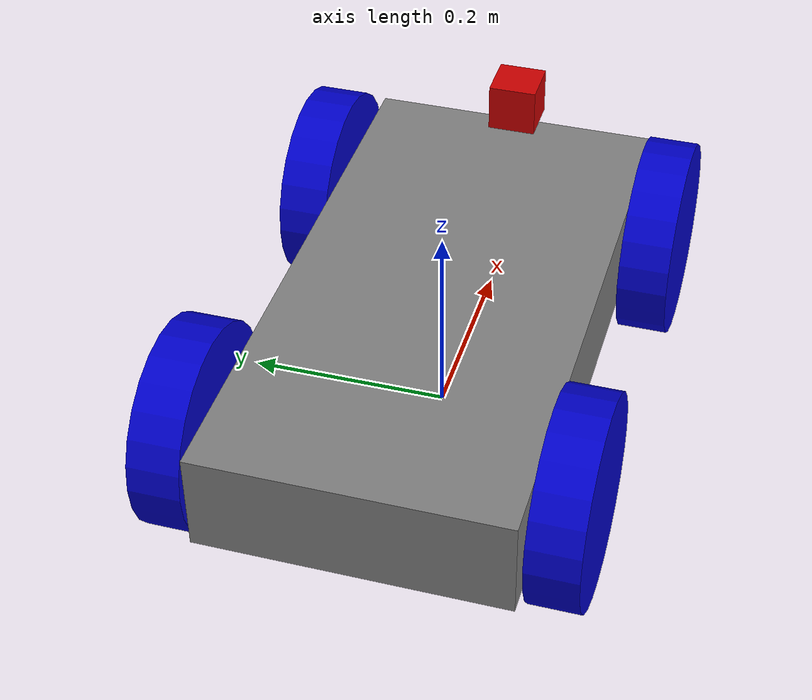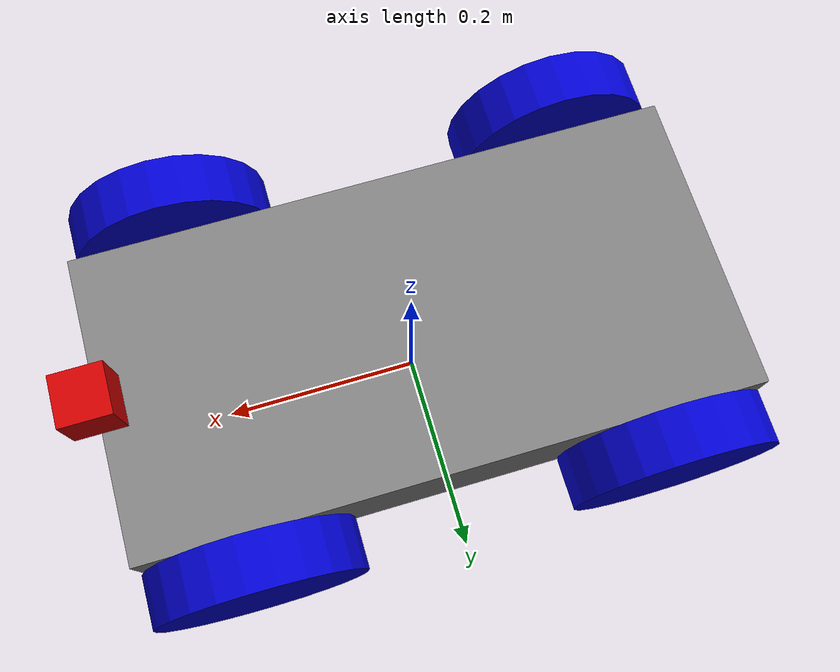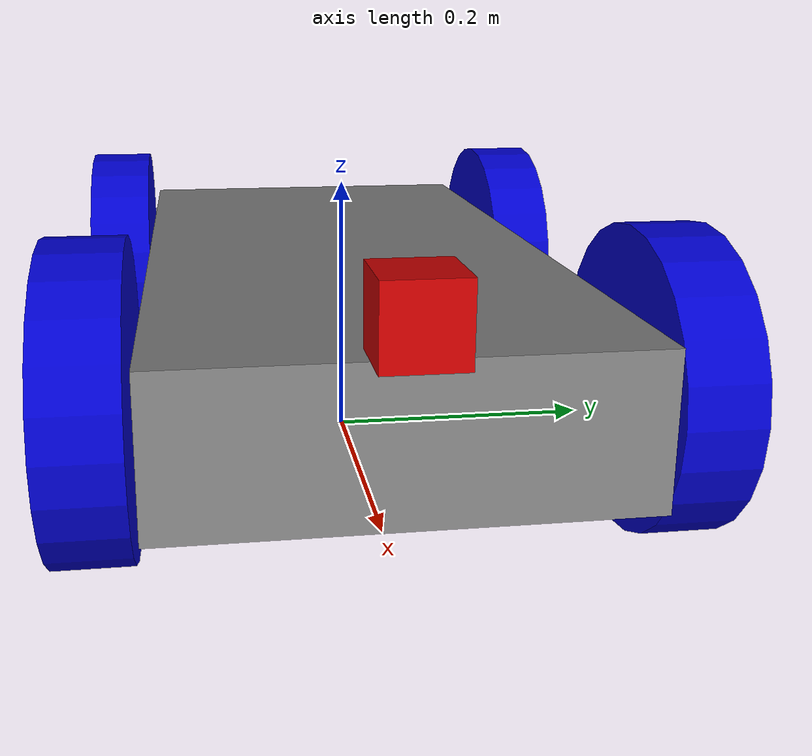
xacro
<?xml version="1.0"?>
<robot xmlns:xacro="http://www.ros.org/wiki/xacro" name="racecar">

    <!-- Materials / Colors -->
    <material name="grey">
        <color rgba="0.5 0.5 0.5 1"/>
    </material>
    <material name="blue">
        <color rgba="0.0 0.0 0.8 1"/>
    </material>
    <material name="red">
        <color rgba="0.8 0.0 0.0 1"/>
    </material>

    <!-- Base Footprint Frame (Ground reference frame) -->
    <link name="base_footprint"/>

    <joint name="base_footprint_joint" type="fixed">
        <parent link="base_footprint"/>
        <child link="base_link"/>
        <origin xyz="0 0 0.1" rpy="0 0 0"/>
    </joint>

    <!-- Base Link (Main Chassis) -->
    <link name="base_link">
        <visual>
            <geometry>
                <box size="0.6 0.3 0.1"/>
            </geometry>
            <material name="grey"/>
        </visual>
        <collision>
            <geometry>
                <box size="0.6 0.3 0.1"/>
            </geometry>
        </collision>
        <inertial>
            <mass value="5.0"/>
            <origin xyz="0 0 0"/>
            <inertia ixx="0.041" ixy="0" ixz="0" iyy="0.154" iyz="0" izz="0.187"/>
        </inertial>
    </link>

    <!-- XACRO Macro for Wheels to Avoid Code Duplication -->
    <xacro:macro name="wheel" params="prefix x_reflect y_reflect">
        <link name="${prefix}_wheel">
            <visual>
                <geometry>
                    <cylinder radius="0.1" length="0.05"/>
                </geometry>
                <material name="blue"/>
            </visual>
            <collision>
                <geometry>
                    <cylinder radius="0.1" length="0.05"/>
                </geometry>
            </collision>
            <inertial>
                <mass value="0.5"/>
                <inertia ixx="0.0013" ixy="0" ixz="0" iyy="0.0013" iyz="0" izz="0.0025"/>
            </inertial>
        </link>

        <joint name="${prefix}_wheel_joint" type="continuous">
            <parent link="base_link"/>
            <child link="${prefix}_wheel"/>
            <origin xyz="${x_reflect * 0.2} ${y_reflect * 0.18} 0" rpy="-1.5708 0 0"/>
            <axis xyz="0 0 1"/>
        </joint>
    </xacro:macro>

    <!-- Instantiate Four Wheels Using the Macro -->
    <xacro:wheel prefix="front_left" x_reflect="1" y_reflect="1" />
    <xacro:wheel prefix="front_right" x_reflect="1" y_reflect="-1" />
    <xacro:wheel prefix="rear_left" x_reflect="-1" y_reflect="1" />
    <xacro:wheel prefix="rear_right" x_reflect="-1" y_reflect="-1" />

    <!-- Camera (FRONT VISION SENSOR) -->
    <link name="camera_link">
        <visual>
            <geometry>
                <box size="0.05 0.05 0.05"/>
            </geometry>
            <material name="red"/>
        </visual>
        <collision>
            <geometry>
                <box size="0.05 0.05 0.05"/>
            </geometry>
        </collision>
    </link>

    <joint name="camera_joint" type="fixed">
        <parent link="base_link"/>
        <child link="camera_link"/>
        <origin xyz="0.3 0 0.075" rpy="0 0 0"/>
    </joint>

    <!-- Gazebo Differential Drive Plugin -->
    <gazebo>
        <plugin filename="gz-sim-diff-drive-system" name="gz::sim::systems::DiffDrive">
            <!-- Wheel Information -->
            <left_joint>front_left_wheel_joint</left_joint>
            <right_joint>front_right_wheel_joint</right_joint>
            <left_joint>rear_left_wheel_joint</left_joint>
            <right_joint>rear_right_wheel_joint</right_joint>

            <!-- Kinematics -->
            <wheel_separation>0.36</wheel_separation>
            <wheel_radius>0.1</wheel_radius>

            <!-- Limits -->
            <max_wheel_torque>20</max_wheel_torque>
            <max_wheel_acceleration>1.0</max_wheel_acceleration>

            <!-- Output -->
            <topic>cmd_vel</topic>
            <odom_topic>odom</odom_topic>
            <frame_id>odom</frame_id>
            <child_frame_id>base_footprint</child_frame_id>
            <odom_publisher_frequency>30</odom_publisher_frequency>

        </plugin>
        <plugin filename="gz-sim-joint-state-publisher-system" name="gz::sim::systems::JointStatePublisher"/>
    </gazebo>

</robot>
